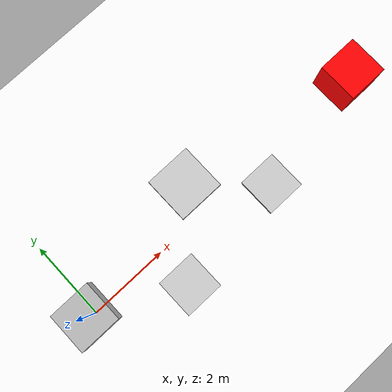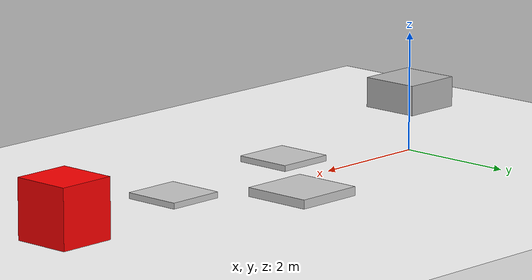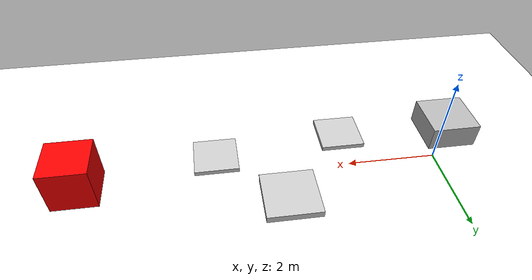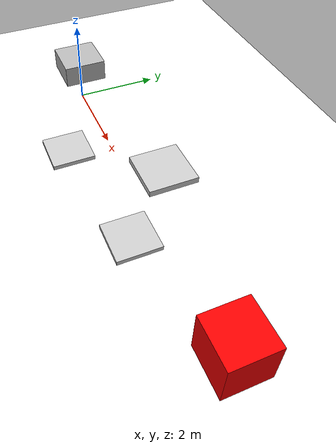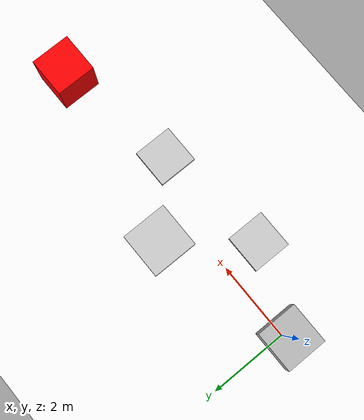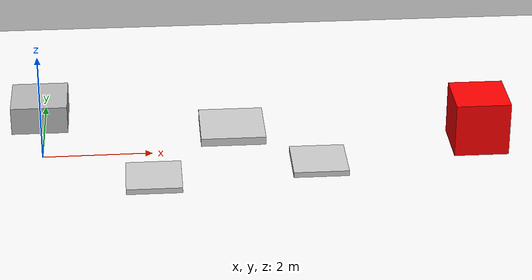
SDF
<?xml version="1.0"?>
<sdf version="1.9">

<world name="lidar_test_world">

  <plugin filename="gz-sim-sensors-system"
          name="gz::sim::systems::Sensors"/>

  <plugin filename="gz-sim-physics-system"
          name="gz::sim::systems::Physics"/>

  <light name="sun" type="directional">
    <pose>0 0 10 0 0 0</pose>
    <diffuse>1 1 1 1</diffuse>
    <specular>0.2 0.2 0.2 1</specular>
    <direction>-0.5 0.1 -1</direction>
  </light>

  <!-- WHITE GROUND -->
  <model name="plateau">
    <static>true</static>

    <link name="ground_link">

      <pose>0 0 -0.5 0 0 0</pose>

      <collision name="collision">
        <geometry>
          <box>
            <size>50 50 1</size>
          </box>
        </geometry>
      </collision>

      <visual name="visual">
        <geometry>
          <box>
            <size>50 50 1</size>
          </box>
        </geometry>

        <material>
          <ambient>1 1 1 1</ambient>
          <diffuse>1 1 1 1</diffuse>
        </material>
      </visual>

    </link>

  </model>

  <!-- LIDAR ROBOT -->
  <model name="lidar_bot">

    <static>false</static>

    <pose>0 0 1 0 0 0</pose>

    <link name="base">

      <collision name="collision">
        <geometry>
          <box>
            <size>1 1 0.5</size>
          </box>
        </geometry>
      </collision>

      <visual name="visual">
        <geometry>
          <box>
            <size>1 1 0.5</size>
          </box>
        </geometry>
      </visual>

      <sensor name="lidar_sensor" type="gpu_lidar">

        <always_on>true</always_on>
        <update_rate>10</update_rate>

        <pose>0 0 0.5 0 0 0</pose>

        <topic>/digger/lidar/points</topic>

        <gz_frame_id>lidar</gz_frame_id>

        <visualize>true</visualize>

        <lidar>

          <scan>

            <horizontal>
              <samples>1024</samples>
              <min_angle>-3.1415926535</min_angle>
              <max_angle>3.1415926535</max_angle>
            </horizontal>

            <vertical>
              <samples>64</samples>
              <min_angle>-0.5</min_angle>
              <max_angle>0.5</max_angle>
            </vertical>

          </scan>

          <range>
            <min>0.1</min>
            <max>30</max>
          </range>

          <point_cloud>true</point_cloud>

        </lidar>

      </sensor>

    </link>

  </model>

  <!-- ROUGH TERRAIN BLOCK 1 -->
  <model name="bump_1">

    <static>true</static>

    <pose>2 -1 0.05 0 0 0</pose>

    <link name="link">

      <collision name="collision">
        <geometry>
          <box>
            <size>1 1 0.1</size>
          </box>
        </geometry>
      </collision>

      <visual name="visual">
        <geometry>
          <box>
            <size>1 1 0.1</size>
          </box>
        </geometry>

        <material>
          <ambient>0.8 0.8 0.8 1</ambient>
        </material>
      </visual>

    </link>

  </model>

  <!-- ROUGH TERRAIN BLOCK 2 -->
  <model name="bump_2">

    <static>true</static>

    <pose>3.5 0.8 0.075 0 0 0</pose>

    <link name="link">

      <collision name="collision">
        <geometry>
          <box>
            <size>1.2 1.2 0.15</size>
          </box>
        </geometry>
      </collision>

      <visual name="visual">
        <geometry>
          <box>
            <size>1.2 1.2 0.15</size>
          </box>
        </geometry>

        <material>
          <ambient>0.8 0.8 0.8 1</ambient>
        </material>
      </visual>

    </link>

  </model>

  <!-- ROUGH TERRAIN BLOCK 3 -->
  <model name="bump_3">

    <static>true</static>

    <pose>5 -0.6 0.05 0 0 0</pose>

    <link name="link">

      <collision name="collision">
        <geometry>
          <box>
            <size>1 1 0.1</size>
          </box>
        </geometry>
      </collision>

      <visual name="visual">
        <geometry>
          <box>
            <size>1 1 0.1</size>
          </box>
        </geometry>

        <material>
          <ambient>0.8 0.8 0.8 1</ambient>
        </material>
      </visual>

    </link>

  </model>

  <!-- TARGET OBJECT -->
  <model name="target_cube">

    <static>true</static>

    <pose>8 0 0.5 0 0 0</pose>

    <link name="link">

      <collision name="collision">
        <geometry>
          <box>
            <size>1 1 1</size>
          </box>
        </geometry>
      </collision>

      <visual name="visual">
        <geometry>
          <box>
            <size>1 1 1</size>
          </box>
        </geometry>

        <material>
          <ambient>1 0 0 1</ambient>
          <diffuse>1 0 0 1</diffuse>
        </material>

      </visual>

    </link>

  </model>

</world>

</sdf>
